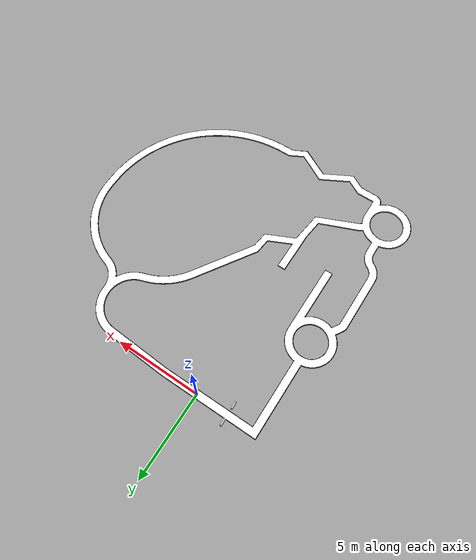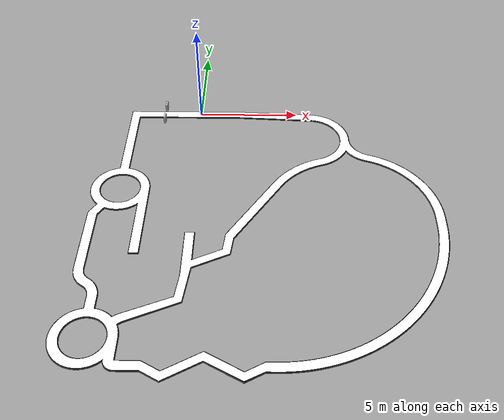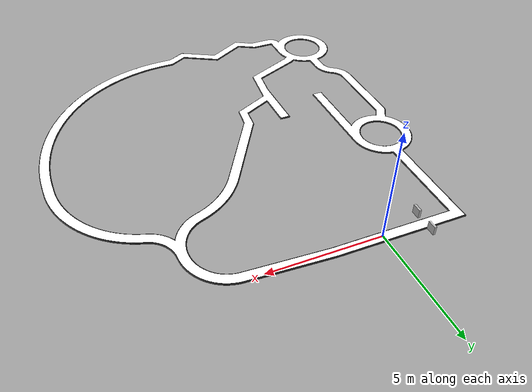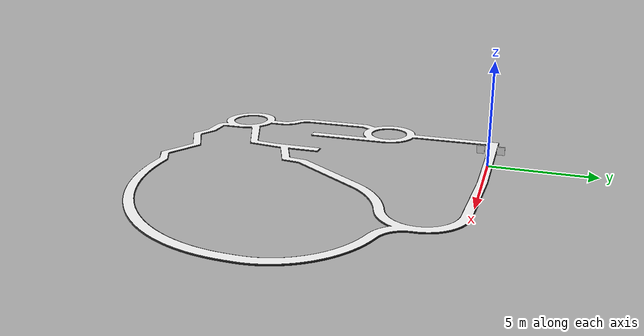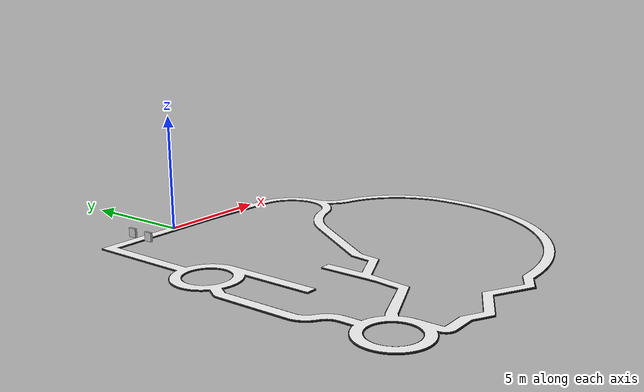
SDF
<?xml version="1.0"?>
<sdf version='1.10'>
  <world name='default'>
    <physics type='ode'>
      <max_step_size>0.0040000000000000001</max_step_size>
      <real_time_factor>1</real_time_factor>
      <real_time_update_rate>250</real_time_update_rate>
    </physics>
    <plugin name='gz::sim::systems::Physics' filename='gz-sim-physics-system'/>
    <plugin name='gz::sim::systems::UserCommands' filename='gz-sim-user-commands-system'/>
    <plugin name='gz::sim::systems::SceneBroadcaster' filename='gz-sim-scene-broadcaster-system'/>
    <plugin name='gz::sim::systems::Contact' filename='gz-sim-contact-system'/>
    <plugin name='gz::sim::systems::Imu' filename='gz-sim-imu-system'/>
    <plugin name='gz::sim::systems::Magnetometer' filename='gz-sim-magnetometer-system'/>
    <plugin name='gz::sim::systems::Altimeter' filename='gz-sim-altimeter-system'/>
    <plugin name='gz::sim::systems::NavSat' filename='gz-sim-navsat-system'/>
    <plugin name='gz::sim::systems::Sensors' filename='gz-sim-sensors-system'>
      <render_engine>ogre2</render_engine>
    </plugin>
    <gui fullscreen='false'>
      <plugin name='3D View' filename='GzScene3D'>
        <gz-gui>
          <title>3D View</title>
          <property type='bool' key='showTitleBar'>0</property>
          <property type='string' key='state'>docked</property>
        </gz-gui>
        <engine>ogre2</engine>
        <scene>scene</scene>
        <ambient_light>0.5984631152222222 0.5984631152222222 0.5984631152222222</ambient_light>
        <background_color>0.8984631152222222 0.8984631152222222 0.8984631152222222</background_color>
        <camera_pose>-6 0 6 0 0.5 0</camera_pose>
      </plugin>
      <plugin name='World control' filename='WorldControl'>
        <gz-gui>
          <title>World control</title>
          <property type='bool' key='showTitleBar'>0</property>
          <property type='bool' key='resizable'>0</property>
          <property type='double' key='height'>72</property>
          <property type='double' key='width'>121</property>
          <property type='double' key='z'>1</property>
          <property type='string' key='state'>floating</property>
          <anchors target='3D View'>
            <line own='left' target='left'/>
            <line own='bottom' target='bottom'/>
          </anchors>
        </gz-gui>
        <play_pause>1</play_pause>
        <step>1</step>
        <start_paused>1</start_paused>
      </plugin>
      <plugin name='World stats' filename='WorldStats'>
        <gz-gui>
          <title>World stats</title>
          <property type='bool' key='showTitleBar'>0</property>
          <property type='bool' key='resizable'>0</property>
          <property type='double' key='height'>110</property>
          <property type='double' key='width'>290</property>
          <property type='double' key='z'>1</property>
          <property type='string' key='state'>floating</property>
          <anchors target='3D View'>
            <line own='right' target='right'/>
            <line own='bottom' target='bottom'/>
          </anchors>
        </gz-gui>
        <sim_time>1</sim_time>
        <real_time>1</real_time>
        <real_time_factor>1</real_time_factor>
        <iterations>1</iterations>
      </plugin>
    </gui>
    <gravity>0 0 -9.8000000000000007</gravity>
    <magnetic_field>6.0000000000000002e-06 2.3e-05 -4.1999999999999998e-05</magnetic_field>
    <atmosphere type='adiabatic'/>
    <spherical_coordinates>
      <surface_model>EARTH_WGS84</surface_model>
      <latitude_deg>39.79480109851339</latitude_deg>
      <longitude_deg>-84.08631702793322</longitude_deg>
      <elevation>265.2</elevation>
      <heading_deg>0</heading_deg>
    </spherical_coordinates>
    <scene>
      <grid>false</grid>
    </scene>

    <include>
      <uri>
        models://test_track_v12
      </uri>
    </include>

  </world>
</sdf>

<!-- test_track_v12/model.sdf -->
<sdf version="1.10">
    <model name="test_track_v12">
        <static>false</static>
        <link name="main">
            <collision name="collision">
                <pose>0 0 0 0 0 0</pose>
                <geometry>
                    <plane>
                        <normal>0 0 1</normal>
                        <size>100 100</size>
                    </plane>
                </geometry>
            </collision>
            <visual name="test_track_v12">
                <pose>8 0.23 -0.06 0 0 3.14</pose>
                <geometry>
                    <mesh>
                        <scale>1 1 1</scale>
                        <uri>meshes/test_track_v12.dae</uri>
                    </mesh>
                </geometry>
            </visual>
        </link>

        <joint name="world_joint" type="fixed">
            <parent>world</parent>
            <child>main</child>
        </joint>
    </model>
</sdf>
